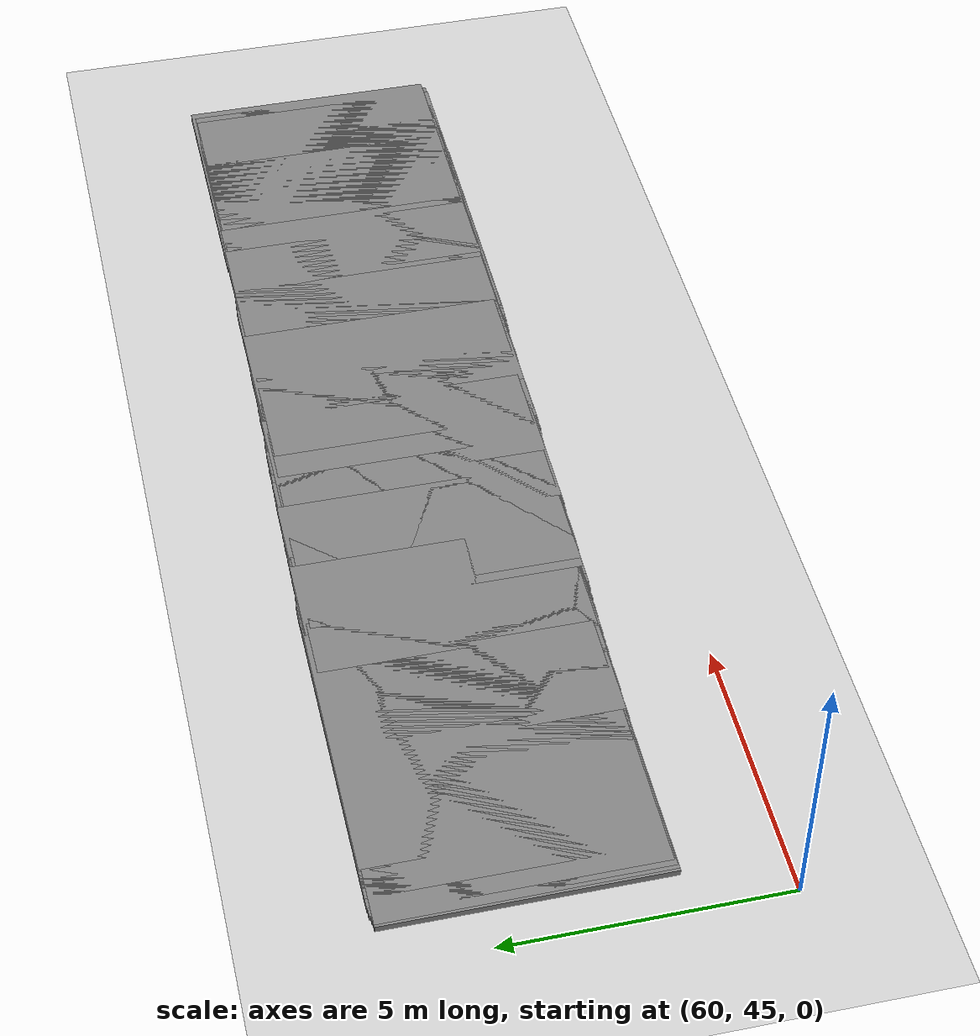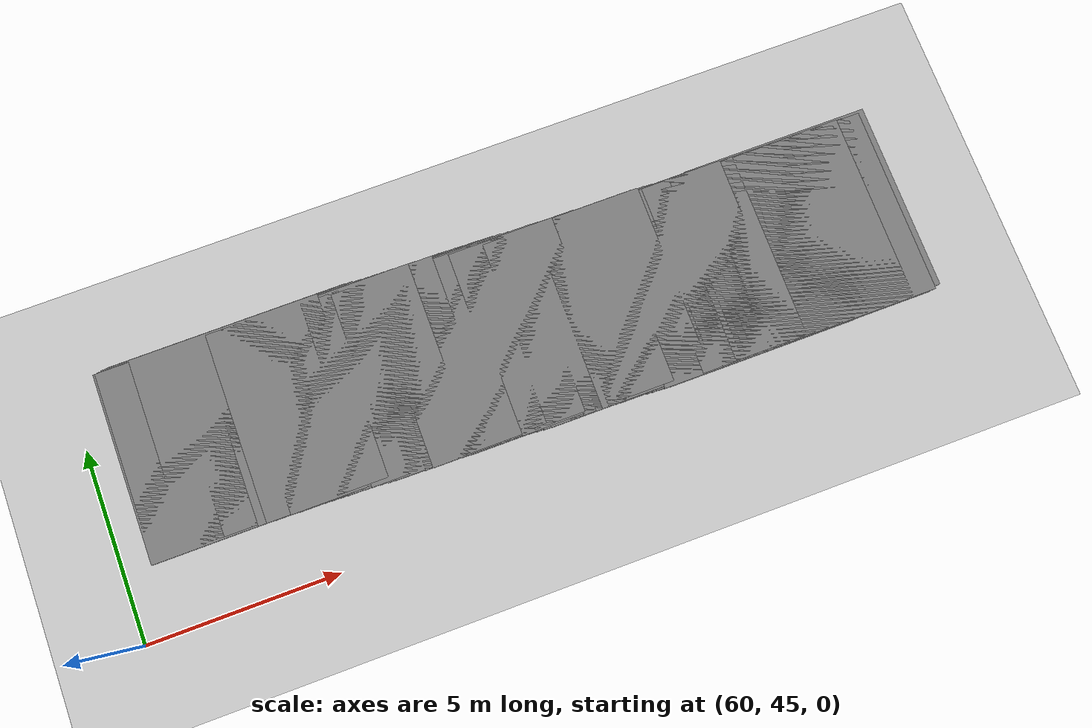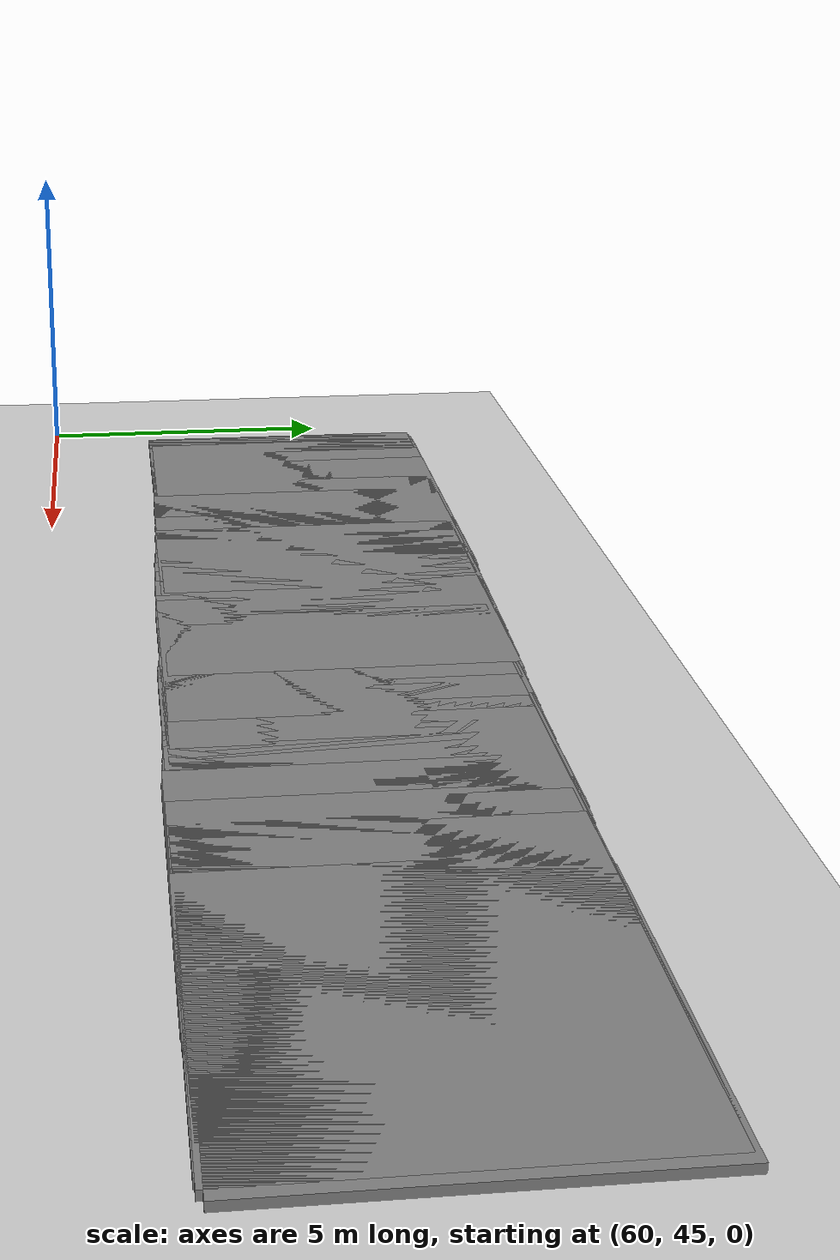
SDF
<sdf version="1.6">
 <world name="default">
  <include><uri>model://sun</uri></include>
  <include><uri>model://ground_plane</uri></include>
  <model name="road_segment_270">
   <static>true</static>
   <link name="link">
    <visual name="visual">
     <geometry><box><size>5.0 5.0 0.2</size></box></geometry>
     <material><ambient>0.5 0.5 0.5 1</ambient><diffuse>0.5 0.5 0.5 1</diffuse></material>
     <pose>79.09264280134074 49.093732123885516 0.0 0 0 0</pose>
    </visual>
    <collision name="collision">
     <geometry><box><size>5.0 5.0 0.2</size></box></geometry>
     <pose>79.09264280134074 49.093732123885516 0.0 0 0 0</pose>
    </collision>
   </link>
  </model>
  <model name="road_segment_271">
   <static>true</static>
   <link name="link">
    <visual name="visual">
     <geometry><box><size>5.0 5.0 0.2</size></box></geometry>
     <material><ambient>0.5 0.5 0.5 1</ambient><diffuse>0.5 0.5 0.5 1</diffuse></material>
     <pose>78.94742888653998 49.02631363896602 0.0 0 0 0</pose>
    </visual>
    <collision name="collision">
     <geometry><box><size>5.0 5.0 0.2</size></box></geometry>
     <pose>78.94742888653998 49.02631363896602 0.0 0 0 0</pose>
    </collision>
   </link>
  </model>
  <model name="road_segment_272">
   <static>true</static>
   <link name="link">
    <visual name="visual">
     <geometry><box><size>5.0 5.0 0.2</size></box></geometry>
     <material><ambient>0.5 0.5 0.5 1</ambient><diffuse>0.5 0.5 0.5 1</diffuse></material>
     <pose>78.79647075040774 49.01160415134155 0.0 0 0 0</pose>
    </visual>
    <collision name="collision">
     <geometry><box><size>5.0 5.0 0.2</size></box></geometry>
     <pose>78.79647075040774 49.01160415134155 0.0 0 0 0</pose>
    </collision>
   </link>
  </model>
  <model name="road_segment_273">
   <static>true</static>
   <link name="link">
    <visual name="visual">
     <geometry><box><size>5.0 5.0 0.2</size></box></geometry>
     <material><ambient>0.5 0.5 0.5 1</ambient><diffuse>0.5 0.5 0.5 1</diffuse></material>
     <pose>78.64206608152881 49.02794802647662 0.0 0 0 0</pose>
    </visual>
    <collision name="collision">
     <geometry><box><size>5.0 5.0 0.2</size></box></geometry>
     <pose>78.64206608152881 49.02794802647662 0.0 0 0 0</pose>
    </collision>
   </link>
  </model>
  <model name="road_segment_274">
   <static>true</static>
   <link name="link">
    <visual name="visual">
     <geometry><box><size>5.0 5.0 0.2</size></box></geometry>
     <material><ambient>0.5 0.5 0.5 1</ambient><diffuse>0.5 0.5 0.5 1</diffuse></material>
     <pose>78.48651256835747 49.04592628912231 0.0 0 0 0</pose>
    </visual>
    <collision name="collision">
     <geometry><box><size>5.0 5.0 0.2</size></box></geometry>
     <pose>78.48651256835747 49.04592628912231 0.0 0 0 0</pose>
    </collision>
   </link>
  </model>
  <model name="road_segment_275">
   <static>true</static>
   <link name="link">
    <visual name="visual">
     <geometry><box><size>5.0 5.0 0.2</size></box></geometry>
     <material><ambient>0.5 0.5 0.5 1</ambient><diffuse>0.5 0.5 0.5 1</diffuse></material>
     <pose>78.3380818896163 49.052872436055075 0.0 0 0 0</pose>
    </visual>
    <collision name="collision">
     <geometry><box><size>5.0 5.0 0.2</size></box></geometry>
     <pose>78.3380818896163 49.052872436055075 0.0 0 0 0</pose>
    </collision>
   </link>
  </model>
  <model name="road_segment_276">
   <static>true</static>
   <link name="link">
    <visual name="visual">
     <geometry><box><size>5.0 5.0 0.2</size></box></geometry>
     <material><ambient>0.5 0.5 0.5 1</ambient><diffuse>0.5 0.5 0.5 1</diffuse></material>
     <pose>78.1857451403854 49.04633488599814 0.0 0 0 0</pose>
    </visual>
    <collision name="collision">
     <geometry><box><size>5.0 5.0 0.2</size></box></geometry>
     <pose>78.1857451403854 49.04633488599814 0.0 0 0 0</pose>
    </collision>
   </link>
  </model>
  <model name="road_segment_277">
   <static>true</static>
   <link name="link">
    <visual name="visual">
     <geometry><box><size>5.0 5.0 0.2</size></box></geometry>
     <material><ambient>0.5 0.5 0.5 1</ambient><diffuse>0.5 0.5 0.5 1</diffuse></material>
     <pose>78.03547631083512 49.049603661026616 0.0 0 0 0</pose>
    </visual>
    <collision name="collision">
     <geometry><box><size>5.0 5.0 0.2</size></box></geometry>
     <pose>78.03547631083512 49.049603661026616 0.0 0 0 0</pose>
    </collision>
   </link>
  </model>
  <model name="road_segment_278">
   <static>true</static>
   <link name="link">
    <visual name="visual">
     <geometry><box><size>5.0 5.0 0.2</size></box></geometry>
     <material><ambient>0.5 0.5 0.5 1</ambient><diffuse>0.5 0.5 0.5 1</diffuse></material>
     <pose>77.88382886815353 49.05368962981401 0.0 0 0 0</pose>
    </visual>
    <collision name="collision">
     <geometry><box><size>5.0 5.0 0.2</size></box></geometry>
     <pose>77.88382886815353 49.05368962981401 0.0 0 0 0</pose>
    </collision>
   </link>
  </model>
  <model name="road_segment_279">
   <static>true</static>
   <link name="link">
    <visual name="visual">
     <geometry><box><size>5.0 5.0 0.2</size></box></geometry>
     <material><ambient>0.5 0.5 0.5 1</ambient><diffuse>0.5 0.5 0.5 1</diffuse></material>
     <pose>77.73930425990211 49.04347470785277 0.0 0 0 0</pose>
    </visual>
    <collision name="collision">
     <geometry><box><size>5.0 5.0 0.2</size></box></geometry>
     <pose>77.73930425990211 49.04347470785277 0.0 0 0 0</pose>
    </collision>
   </link>
  </model>
  <model name="road_segment_280">
   <static>true</static>
   <link name="link">
    <visual name="visual">
     <geometry><box><size>5.0 5.0 0.2</size></box></geometry>
     <material><ambient>0.5 0.5 0.5 1</ambient><diffuse>0.5 0.5 0.5 1</diffuse></material>
     <pose>77.59523918936114 49.03203399525677 0.0 0 0 0</pose>
    </visual>
    <collision name="collision">
     <geometry><box><size>5.0 5.0 0.2</size></box></geometry>
     <pose>77.59523918936114 49.03203399525677 0.0 0 0 0</pose>
    </collision>
   </link>
  </model>
  <model name="road_segment_281">
   <static>true</static>
   <link name="link">
    <visual name="visual">
     <geometry><box><size>5.0 5.0 0.2</size></box></geometry>
     <material><ambient>0.5 0.5 0.5 1</ambient><diffuse>0.5 0.5 0.5 1</diffuse></material>
     <pose>77.45186342540214 49.029991010870326 0.0 0 0 0</pose>
    </visual>
    <collision name="collision">
     <geometry><box><size>5.0 5.0 0.2</size></box></geometry>
     <pose>77.45186342540214 49.029991010870326 0.0 0 0 0</pose>
    </collision>
   </link>
  </model>
  <model name="road_segment_282">
   <static>true</static>
   <link name="link">
    <visual name="visual">
     <geometry><box><size>5.0 5.0 0.2</size></box></geometry>
     <material><ambient>0.5 0.5 0.5 1</ambient><diffuse>0.5 0.5 0.5 1</diffuse></material>
     <pose>77.30871743024937 49.027130832717695 0.0 0 0 0</pose>
    </visual>
    <collision name="collision">
     <geometry><box><size>5.0 5.0 0.2</size></box></geometry>
     <pose>77.30871743024937 49.027130832717695 0.0 0 0 0</pose>
    </collision>
   </link>
  </model>
  <model name="road_segment_283">
   <static>true</static>
   <link name="link">
    <visual name="visual">
     <geometry><box><size>5.0 5.0 0.2</size></box></geometry>
     <material><ambient>0.5 0.5 0.5 1</ambient><diffuse>0.5 0.5 0.5 1</diffuse></material>
     <pose>77.16603097283972 49.02467925144816 0.0 0 0 0</pose>
    </visual>
    <collision name="collision">
     <geometry><box><size>5.0 5.0 0.2</size></box></geometry>
     <pose>77.16603097283972 49.02467925144816 0.0 0 0 0</pose>
    </collision>
   </link>
  </model>
  <model name="road_segment_284">
   <static>true</static>
   <link name="link">
    <visual name="visual">
     <geometry><box><size>5.0 5.0 0.2</size></box></geometry>
     <material><ambient>0.5 0.5 0.5 1</ambient><diffuse>0.5 0.5 0.5 1</diffuse></material>
     <pose>77.01668121867768 49.015281523245854 0.0 0 0 0</pose>
    </visual>
    <collision name="collision">
     <geometry><box><size>5.0 5.0 0.2</size></box></geometry>
     <pose>77.01668121867768 49.015281523245854 0.0 0 0 0</pose>
    </collision>
   </link>
  </model>
  <model name="road_segment_285">
   <static>true</static>
   <link name="link">
    <visual name="visual">
     <geometry><box><size>5.0 5.0 0.2</size></box></geometry>
     <material><ambient>0.5 0.5 0.5 1</ambient><diffuse>0.5 0.5 0.5 1</diffuse></material>
     <pose>76.86641238912739 49.00792677943724 0.0 0 0 0</pose>
    </visual>
    <collision name="collision">
     <geometry><box><size>5.0 5.0 0.2</size></box></geometry>
     <pose>76.86641238912739 49.00792677943724 0.0 0 0 0</pose>
    </collision>
   </link>
  </model>
  <model name="road_segment_286">
   <static>true</static>
   <link name="link">
    <visual name="visual">
     <geometry><box><size>5.0 5.0 0.2</size></box></geometry>
     <material><ambient>0.5 0.5 0.5 1</ambient><diffuse>0.5 0.5 0.5 1</diffuse></material>
     <pose>76.71062910711717 48.99975484186971 0.0 0 0 0</pose>
    </visual>
    <collision name="collision">
     <geometry><box><size>5.0 5.0 0.2</size></box></geometry>
     <pose>76.71062910711717 48.99975484186971 0.0 0 0 0</pose>
    </collision>
   </link>
  </model>
  <model name="road_segment_287">
   <static>true</static>
   <link name="link">
    <visual name="visual">
     <geometry><box><size>5.0 5.0 0.2</size></box></geometry>
     <material><ambient>0.5 0.5 0.5 1</ambient><diffuse>0.5 0.5 0.5 1</diffuse></material>
     <pose>76.55530536278472 49.00751818256141 0.0 0 0 0</pose>
    </visual>
    <collision name="collision">
     <geometry><box><size>5.0 5.0 0.2</size></box></geometry>
     <pose>76.55530536278472 49.00751818256141 0.0 0 0 0</pose>
    </collision>
   </link>
  </model>
  <model name="road_segment_288">
   <static>true</static>
   <link name="link">
    <visual name="visual">
     <geometry><box><size>5.0 5.0 0.2</size></box></geometry>
     <material><ambient>0.5 0.5 0.5 1</ambient><diffuse>0.5 0.5 0.5 1</diffuse></material>
     <pose>76.39722439225494 49.015690120128944 0.0 0 0 0</pose>
    </visual>
    <collision name="collision">
     <geometry><box><size>5.0 5.0 0.2</size></box></geometry>
     <pose>76.39722439225494 49.015690120128944 0.0 0 0 0</pose>
    </collision>
   </link>
  </model>
  <model name="road_segment_289">
   <static>true</static>
   <link name="link">
    <visual name="visual">
     <geometry><box><size>5.0 5.0 0.2</size></box></geometry>
     <material><ambient>0.5 0.5 0.5 1</ambient><diffuse>0.5 0.5 0.5 1</diffuse></material>
     <pose>76.23408850694298 49.02427065457232 0.0 0 0 0</pose>
    </visual>
    <collision name="collision">
     <geometry><box><size>5.0 5.0 0.2</size></box></geometry>
     <pose>76.23408850694298 49.02427065457232 0.0 0 0 0</pose>
    </collision>
   </link>
  </model>
  <model name="road_segment_290">
   <static>true</static>
   <link name="link">
    <visual name="visual">
     <geometry><box><size>5.0 5.0 0.2</size></box></geometry>
     <material><ambient>0.5 0.5 0.5 1</ambient><diffuse>0.5 0.5 0.5 1</diffuse></material>
     <pose>76.06888470198304 49.0348941734094 0.0 0 0 0</pose>
    </visual>
    <collision name="collision">
     <geometry><box><size>5.0 5.0 0.2</size></box></geometry>
     <pose>76.06888470198304 49.0348941734094 0.0 0 0 0</pose>
    </collision>
   </link>
  </model>
  <model name="road_segment_291">
   <static>true</static>
   <link name="link">
    <visual name="visual">
     <geometry><box><size>5.0 5.0 0.2</size></box></geometry>
     <material><ambient>0.5 0.5 0.5 1</ambient><diffuse>0.5 0.5 0.5 1</diffuse></material>
     <pose>75.90689766096351 49.05164664542031 0.0 0 0 0</pose>
    </visual>
    <collision name="collision">
     <geometry><box><size>5.0 5.0 0.2</size></box></geometry>
     <pose>75.90689766096351 49.05164664542031 0.0 0 0 0</pose>
    </collision>
   </link>
  </model>
  <model name="road_segment_292">
   <static>true</static>
   <link name="link">
    <visual name="visual">
     <geometry><box><size>5.0 5.0 0.2</size></box></geometry>
     <material><ambient>0.5 0.5 0.5 1</ambient><diffuse>0.5 0.5 0.5 1</diffuse></material>
     <pose>75.74123431826048 49.05777559859415 0.0 0 0 0</pose>
    </visual>
    <collision name="collision">
     <geometry><box><size>5.0 5.0 0.2</size></box></geometry>
     <pose>75.74123431826048 49.05777559859415 0.0 0 0 0</pose>
    </collision>
   </link>
  </model>
  <model name="road_segment_293">
   <static>true</static>
   <link name="link">
    <visual name="visual">
     <geometry><box><size>5.0 5.0 0.2</size></box></geometry>
     <material><ambient>0.5 0.5 0.5 1</ambient><diffuse>0.5 0.5 0.5 1</diffuse></material>
     <pose>75.57465190016921 49.056549807959385 0.0 0 0 0</pose>
    </visual>
    <collision name="collision">
     <geometry><box><size>5.0 5.0 0.2</size></box></geometry>
     <pose>75.57465190016921 49.056549807959385 0.0 0 0 0</pose>
    </collision>
   </link>
  </model>
  <model name="road_segment_294">
   <static>true</static>
   <link name="link">
    <visual name="visual">
     <geometry><box><size>5.0 5.0 0.2</size></box></geometry>
     <material><ambient>0.5 0.5 0.5 1</ambient><diffuse>0.5 0.5 0.5 1</diffuse></material>
     <pose>75.40783971323906 49.05123804854448 0.0 0 0 0</pose>
    </visual>
    <collision name="collision">
     <geometry><box><size>5.0 5.0 0.2</size></box></geometry>
     <pose>75.40783971323906 49.05123804854448 0.0 0 0 0</pose>
    </collision>
   </link>
  </model>
  <model name="road_segment_295">
   <static>true</static>
   <link name="link">
    <visual name="visual">
     <geometry><box><size>5.0 5.0 0.2</size></box></geometry>
     <material><ambient>0.5 0.5 0.5 1</ambient><diffuse>0.5 0.5 0.5 1</diffuse></material>
     <pose>75.24010845088802 49.05859279235308 0.0 0 0 0</pose>
    </visual>
    <collision name="collision">
     <geometry><box><size>5.0 5.0 0.2</size></box></geometry>
     <pose>75.24010845088802 49.05859279235308 0.0 0 0 0</pose>
    </collision>
   </link>
  </model>
  <model name="road_segment_296">
   <static>true</static>
   <link name="link">
    <visual name="visual">
     <geometry><box><size>5.0 5.0 0.2</size></box></geometry>
     <material><ambient>0.5 0.5 0.5 1</ambient><diffuse>0.5 0.5 0.5 1</diffuse></material>
     <pose>75.07007950001746 49.06717332679646 0.0 0 0 0</pose>
    </visual>
    <collision name="collision">
     <geometry><box><size>5.0 5.0 0.2</size></box></geometry>
     <pose>75.07007950001746 49.06717332679646 0.0 0 0 0</pose>
    </collision>
   </link>
  </model>
  <model name="road_segment_297">
   <static>true</static>
   <link name="link">
    <visual name="visual">
     <geometry><box><size>5.0 5.0 0.2</size></box></geometry>
     <material><ambient>0.5 0.5 0.5 1</ambient><diffuse>0.5 0.5 0.5 1</diffuse></material>
     <pose>74.90418638847552 49.06676472992062 0.0 0 0 0</pose>
    </visual>
    <collision name="collision">
     <geometry><box><size>5.0 5.0 0.2</size></box></geometry>
     <pose>74.90418638847552 49.06676472992062 0.0 0 0 0</pose>
    </collision>
   </link>
  </model>
  <model name="road_segment_298">
   <static>true</static>
   <link name="link">
    <visual name="visual">
     <geometry><box><size>5.0 5.0 0.2</size></box></geometry>
     <material><ambient>0.5 0.5 0.5 1</ambient><diffuse>0.5 0.5 0.5 1</diffuse></material>
     <pose>74.73553605073626 49.06513034240276 0.0 0 0 0</pose>
    </visual>
    <collision name="collision">
     <geometry><box><size>5.0 5.0 0.2</size></box></geometry>
     <pose>74.73553605073626 49.06513034240276 0.0 0 0 0</pose>
    </collision>
   </link>
  </model>
  <model name="road_segment_299">
   <static>true</static>
   <link name="link">
    <visual name="visual">
     <geometry><box><size>5.0 5.0 0.2</size></box></geometry>
     <material><ambient>0.5 0.5 0.5 1</ambient><diffuse>0.5 0.5 0.5 1</diffuse></material>
     <pose>74.57285970313475 49.07044210182492 0.0 0 0 0</pose>
    </visual>
    <collision name="collision">
     <geometry><box><size>5.0 5.0 0.2</size></box></geometry>
     <pose>74.57285970313475 49.07044210182492 0.0 0 0 0</pose>
    </collision>
   </link>
  </model>
  <model name="road_segment_300">
   <static>true</static>
   <link name="link">
    <visual name="visual">
     <geometry><box><size>5.0 5.0 0.2</size></box></geometry>
     <material><ambient>0.5 0.5 0.5 1</ambient><diffuse>0.5 0.5 0.5 1</diffuse></material>
     <pose>74.40489867194482 49.076571054998766 0.0 0 0 0</pose>
    </visual>
    <collision name="collision">
     <geometry><box><size>5.0 5.0 0.2</size></box></geometry>
     <pose>74.40489867194482 49.076571054998766 0.0 0 0 0</pose>
    </collision>
   </link>
  </model>
  <model name="road_segment_301">
   <static>true</static>
   <link name="link">
    <visual name="visual">
     <geometry><box><size>5.0 5.0 0.2</size></box></geometry>
     <material><ambient>0.5 0.5 0.5 1</ambient><diffuse>0.5 0.5 0.5 1</diffuse></material>
     <pose>74.238775791564 49.076571054998766 0.0 0 0 0</pose>
    </visual>
    <collision name="collision">
     <geometry><box><size>5.0 5.0 0.2</size></box></geometry>
     <pose>74.238775791564 49.076571054998766 0.0 0 0 0</pose>
    </collision>
   </link>
  </model>
  <model name="road_segment_302">
   <static>true</static>
   <link name="link">
    <visual name="visual">
     <geometry><box><size>5.0 5.0 0.2</size></box></geometry>
     <material><ambient>0.5 0.5 0.5 1</ambient><diffuse>0.5 0.5 0.5 1</diffuse></material>
     <pose>74.06851707182187 49.075345264363996 0.0 0 0 0</pose>
    </visual>
    <collision name="collision">
     <geometry><box><size>5.0 5.0 0.2</size></box></geometry>
     <pose>74.06851707182187 49.075345264363996 0.0 0 0 0</pose>
    </collision>
   </link>
  </model>
  <model name="road_segment_303">
   <static>true</static>
   <link name="link">
    <visual name="visual">
     <geometry><box><size>5.0 5.0 0.2</size></box></geometry>
     <material><ambient>0.5 0.5 0.5 1</ambient><diffuse>0.5 0.5 0.5 1</diffuse></material>
     <pose>73.89664997010954 49.071259295576596 0.0 0 0 0</pose>
    </visual>
    <collision name="collision">
     <geometry><box><size>5.0 5.0 0.2</size></box></geometry>
     <pose>73.89664997010954 49.071259295576596 0.0 0 0 0</pose>
    </collision>
   </link>
  </model>
  <model name="road_segment_304">
   <static>true</static>
   <link name="link">
    <visual name="visual">
     <geometry><box><size>5.0 5.0 0.2</size></box></geometry>
     <material><ambient>0.5 0.5 0.5 1</ambient><diffuse>0.5 0.5 0.5 1</diffuse></material>
     <pose>73.71972795368035 49.064721745526924 0.0 0 0 0</pose>
    </visual>
    <collision name="collision">
     <geometry><box><size>5.0 5.0 0.2</size></box></geometry>
     <pose>73.71972795368035 49.064721745526924 0.0 0 0 0</pose>
    </collision>
   </link>
  </model>
  <model name="road_segment_305">
   <static>true</static>
   <link name="link">
    <visual name="visual">
     <geometry><box><size>5.0 5.0 0.2</size></box></geometry>
     <material><ambient>0.5 0.5 0.5 1</ambient><diffuse>0.5 0.5 0.5 1</diffuse></material>
     <pose>73.534993796239 49.06635613303752 0.0 0 0 0</pose>
    </visual>
    <collision name="collision">
     <geometry><box><size>5.0 5.0 0.2</size></box></geometry>
     <pose>73.534993796239 49.06635613303752 0.0 0 0 0</pose>
    </collision>
   </link>
  </model>
  <model name="road_segment_306">
   <static>true</static>
   <link name="link">
    <visual name="visual">
     <geometry><box><size>5.0 5.0 0.2</size></box></geometry>
     <material><ambient>0.5 0.5 0.5 1</ambient><diffuse>0.5 0.5 0.5 1</diffuse></material>
     <pose>73.35186802076784 49.074119473729226 0.0 0 0 0</pose>
    </visual>
    <collision name="collision">
     <geometry><box><size>5.0 5.0 0.2</size></box></geometry>
     <pose>73.35186802076784 49.074119473729226 0.0 0 0 0</pose>
    </collision>
   </link>
  </model>
  <model name="road_segment_307">
   <static>true</static>
   <link name="link">
    <visual name="visual">
     <geometry><box><size>5.0 5.0 0.2</size></box></geometry>
     <material><ambient>0.5 0.5 0.5 1</ambient><diffuse>0.5 0.5 0.5 1</diffuse></material>
     <pose>73.1703506272669 49.09087194574015 0.0 0 0 0</pose>
    </visual>
    <collision name="collision">
     <geometry><box><size>5.0 5.0 0.2</size></box></geometry>
     <pose>73.1703506272669 49.09087194574015 0.0 0 0 0</pose>
    </collision>
   </link>
  </model>
  <model name="road_segment_308">
   <static>true</static>
   <link name="link">
    <visual name="visual">
     <geometry><box><size>5.0 5.0 0.2</size></box></geometry>
     <material><ambient>0.5 0.5 0.5 1</ambient><diffuse>0.5 0.5 0.5 1</diffuse></material>
     <pose>72.98722485179574 49.10394704584675 0.0 0 0 0</pose>
    </visual>
    <collision name="collision">
     <geometry><box><size>5.0 5.0 0.2</size></box></geometry>
     <pose>72.98722485179574 49.10394704584675 0.0 0 0 0</pose>
    </collision>
   </link>
  </model>
  <model name="road_segment_309">
   <static>true</static>
   <link name="link">
    <visual name="visual">
     <geometry><box><size>5.0 5.0 0.2</size></box></geometry>
     <material><ambient>0.5 0.5 0.5 1</ambient><diffuse>0.5 0.5 0.5 1</diffuse></material>
     <pose>72.80272046322594 49.117839339705036 0.0 0 0 0</pose>
    </visual>
    <collision name="collision">
     <geometry><box><size>5.0 5.0 0.2</size></box></geometry>
     <pose>72.80272046322594 49.117839339705036 0.0 0 0 0</pose>
    </collision>
   </link>
  </model>
  <model name="road_segment_310">
   <static>true</static>
   <link name="link">
    <visual name="visual">
     <geometry><box><size>5.0 5.0 0.2</size></box></geometry>
     <material><ambient>0.5 0.5 0.5 1</ambient><diffuse>0.5 0.5 0.5 1</diffuse></material>
     <pose>72.6195946877548 49.123151099127206 0.0 0 0 0</pose>
    </visual>
    <collision name="collision">
     <geometry><box><size>5.0 5.0 0.2</size></box></geometry>
     <pose>72.6195946877548 49.123151099127206 0.0 0 0 0</pose>
    </collision>
   </link>
  </model>
  <model name="road_segment_311">
   <static>true</static>
   <link name="link">
    <visual name="visual">
     <geometry><box><size>5.0 5.0 0.2</size></box></geometry>
     <material><ambient>0.5 0.5 0.5 1</ambient><diffuse>0.5 0.5 0.5 1</diffuse></material>
     <pose>72.43003538440281 49.11988232409873 0.0 0 0 0</pose>
    </visual>
    <collision name="collision">
     <geometry><box><size>5.0 5.0 0.2</size></box></geometry>
     <pose>72.43003538440281 49.11988232409873 0.0 0 0 0</pose>
    </collision>
   </link>
  </model>
  <model name="road_segment_312">
   <static>true</static>
   <link name="link">
    <visual name="visual">
     <geometry><box><size>5.0 5.0 0.2</size></box></geometry>
     <material><ambient>0.5 0.5 0.5 1</ambient><diffuse>0.5 0.5 0.5 1</diffuse></material>
     <pose>72.23794862369239 49.11661354907027 0.0 0 0 0</pose>
    </visual>
    <collision name="collision">
     <geometry><box><size>5.0 5.0 0.2</size></box></geometry>
     <pose>72.23794862369239 49.11661354907027 0.0 0 0 0</pose>
    </collision>
   </link>
  </model>
  <model name="road_segment_313">
   <static>true</static>
   <link name="link">
    <visual name="visual">
     <geometry><box><size>5.0 5.0 0.2</size></box></geometry>
     <material><ambient>0.5 0.5 0.5 1</ambient><diffuse>0.5 0.5 0.5 1</diffuse></material>
     <pose>72.04126648591024 49.11865653346397 0.0 0 0 0</pose>
    </visual>
    <collision name="collision">
     <geometry><box><size>5.0 5.0 0.2</size></box></geometry>
     <pose>72.04126648591024 49.11865653346397 0.0 0 0 0</pose>
    </collision>
   </link>
  </model>
  <model name="road_segment_314">
   <static>true</static>
   <link name="link">
    <visual name="visual">
     <geometry><box><size>5.0 5.0 0.2</size></box></geometry>
     <material><ambient>0.5 0.5 0.5 1</ambient><diffuse>0.5 0.5 0.5 1</diffuse></material>
     <pose>71.8374615136979 49.1174307428292 0.0 0 0 0</pose>
    </visual>
    <collision name="collision">
     <geometry><box><size>5.0 5.0 0.2</size></box></geometry>
     <pose>71.8374615136979 49.1174307428292 0.0 0 0 0</pose>
    </collision>
   </link>
  </model>
  <model name="road_segment_315">
   <static>true</static>
   <link name="link">
    <visual name="visual">
     <geometry><box><size>5.0 5.0 0.2</size></box></geometry>
     <material><ambient>0.5 0.5 0.5 1</ambient><diffuse>0.5 0.5 0.5 1</diffuse></material>
     <pose>71.63181839070913 49.11293617716596 0.0 0 0 0</pose>
    </visual>
    <collision name="collision">
     <geometry><box><size>5.0 5.0 0.2</size></box></geometry>
     <pose>71.63181839070913 49.11293617716596 0.0 0 0 0</pose>
    </collision>
   </link>
  </model>
  <model name="road_segment_316">
   <static>true</static>
   <link name="link">
    <visual name="visual">
     <geometry><box><size>5.0 5.0 0.2</size></box></geometry>
     <material><ambient>0.5 0.5 0.5 1</ambient><diffuse>0.5 0.5 0.5 1</diffuse></material>
     <pose>71.41974173980685 49.11334477404906 0.0 0 0 0</pose>
    </visual>
    <collision name="collision">
     <geometry><box><size>5.0 5.0 0.2</size></box></geometry>
     <pose>71.41974173980685 49.11334477404906 0.0 0 0 0</pose>
    </collision>
   </link>
  </model>
  <model name="road_segment_317">
   <static>true</static>
   <link name="link">
    <visual name="visual">
     <geometry><box><size>5.0 5.0 0.2</size></box></geometry>
     <material><ambient>0.5 0.5 0.5 1</ambient><diffuse>0.5 0.5 0.5 1</diffuse></material>
     <pose>71.21134139055545 49.124785486637805 0.0 0 0 0</pose>
    </visual>
    <collision name="collision">
     <geometry><box><size>5.0 5.0 0.2</size></box></geometry>
     <pose>71.21134139055545 49.124785486637805 0.0 0 0 0</pose>
    </collision>
   </link>
  </model>
  <model name="road_segment_318">
   <static>true</static>
   <link name="link">
    <visual name="visual">
     <geometry><box><size>5.0 5.0 0.2</size></box></geometry>
     <material><ambient>0.5 0.5 0.5 1</ambient><diffuse>0.5 0.5 0.5 1</diffuse></material>
     <pose>71.01396994622395 49.13581760235072 0.0 0 0 0</pose>
    </visual>
    <collision name="collision">
     <geometry><box><size>5.0 5.0 0.2</size></box></geometry>
     <pose>71.01396994622395 49.13581760235072 0.0 0 0 0</pose>
    </collision>
   </link>
  </model>
  <model name="road_segment_319">
   <static>true</static>
   <link name="link">
    <visual name="visual">
     <geometry><box><size>5.0 5.0 0.2</size></box></geometry>
     <material><ambient>0.5 0.5 0.5 1</ambient><diffuse>0.5 0.5 0.5 1</diffuse></material>
     <pose>70.8230320297733 49.13786058674442 0.0 0 0 0</pose>
    </visual>
    <collision name="collision">
     <geometry><box><size>5.0 5.0 0.2</size></box></geometry>
     <pose>70.8230320297733 49.13786058674442 0.0 0 0 0</pose>
    </collision>
   </link>
  </model>
  <model name="road_segment_320">
   <static>true</static>
   <link name="link">
    <visual name="visual">
     <geometry><box><size>5.0 5.0 0.2</size></box></geometry>
     <material><ambient>0.5 0.5 0.5 1</ambient><diffuse>0.5 0.5 0.5 1</diffuse></material>
     <pose>70.63531087726308 49.13459181171595 0.0 0 0 0</pose>
    </visual>
    <collision name="collision">
     <geometry><box><size>5.0 5.0 0.2</size></box></geometry>
     <pose>70.63531087726308 49.13459181171595 0.0 0 0 0</pose>
    </collision>
   </link>
  </model>
  <model name="road_segment_321">
   <static>true</static>
   <link name="link">
    <visual name="visual">
     <geometry><box><size>5.0 5.0 0.2</size></box></geometry>
     <material><ambient>0.5 0.5 0.5 1</ambient><diffuse>0.5 0.5 0.5 1</diffuse></material>
     <pose>70.44896833785151 49.13459181171595 0.0 0 0 0</pose>
    </visual>
    <collision name="collision">
     <geometry><box><size>5.0 5.0 0.2</size></box></geometry>
     <pose>70.44896833785151 49.13459181171595 0.0 0 0 0</pose>
    </collision>
   </link>
  </model>
  <model name="road_segment_322">
   <static>true</static>
   <link name="link">
    <visual name="visual">
     <geometry><box><size>5.0 5.0 0.2</size></box></geometry>
     <material><ambient>0.5 0.5 0.5 1</ambient><diffuse>0.5 0.5 0.5 1</diffuse></material>
     <pose>70.25504342629934 49.14194655553182 0.0 0 0 0</pose>
    </visual>
    <collision name="collision">
     <geometry><box><size>5.0 5.0 0.2</size></box></geometry>
     <pose>70.25504342629934 49.14194655553182 0.0 0 0 0</pose>
    </collision>
   </link>
  </model>
  <model name="road_segment_323">
   <static>true</static>
   <link name="link">
    <visual name="visual">
     <geometry><box><size>5.0 5.0 0.2</size></box></geometry>
     <material><ambient>0.5 0.5 0.5 1</ambient><diffuse>0.5 0.5 0.5 1</diffuse></material>
     <pose>70.06042920819783 49.15338726812056 0.0 0 0 0</pose>
    </visual>
    <collision name="collision">
     <geometry><box><size>5.0 5.0 0.2</size></box></geometry>
     <pose>70.06042920819783 49.15338726812056 0.0 0 0 0</pose>
    </collision>
   </link>
  </model>
  <model name="road_segment_324">
   <static>true</static>
   <link name="link">
    <visual name="visual">
     <geometry><box><size>5.0 5.0 0.2</size></box></geometry>
     <material><ambient>0.5 0.5 0.5 1</ambient><diffuse>0.5 0.5 0.5 1</diffuse></material>
     <pose>69.86765314093807 49.16033341505334 0.0 0 0 0</pose>
    </visual>
    <collision name="collision">
     <geometry><box><size>5.0 5.0 0.2</size></box></geometry>
     <pose>69.86765314093807 49.16033341505334 0.0 0 0 0</pose>
    </collision>
   </link>
  </model>
  <model name="road_segment_325">
   <static>true</static>
   <link name="link">
    <visual name="visual">
     <geometry><box><size>5.0 5.0 0.2</size></box></geometry>
     <material><ambient>0.5 0.5 0.5 1</ambient><diffuse>0.5 0.5 0.5 1</diffuse></material>
     <pose>69.67280915399768 49.155021655631174 0.0 0 0 0</pose>
    </visual>
    <collision name="collision">
     <geometry><box><size>5.0 5.0 0.2</size></box></geometry>
     <pose>69.67280915399768 49.155021655631174 0.0 0 0 0</pose>
    </collision>
   </link>
  </model>
  <model name="road_segment_326">
   <static>true</static>
   <link name="link">
    <visual name="visual">
     <geometry><box><size>5.0 5.0 0.2</size></box></geometry>
     <material><ambient>0.5 0.5 0.5 1</ambient><diffuse>0.5 0.5 0.5 1</diffuse></material>
     <pose>69.47589724737662 49.1595162212944 0.0 0 0 0</pose>
    </visual>
    <collision name="collision">
     <geometry><box><size>5.0 5.0 0.2</size></box></geometry>
     <pose>69.47589724737662 49.1595162212944 0.0 0 0 0</pose>
    </collision>
   </link>
  </model>
  <model name="road_segment_327">
   <static>true</static>
   <link name="link">
    <visual name="visual">
     <geometry><box><size>5.0 5.0 0.2</size></box></geometry>
     <material><ambient>0.5 0.5 0.5 1</ambient><diffuse>0.5 0.5 0.5 1</diffuse></material>
     <pose>69.28013418501534 49.17013974013148 0.0 0 0 0</pose>
    </visual>
    <collision name="collision">
     <geometry><box><size>5.0 5.0 0.2</size></box></geometry>
     <pose>69.28013418501534 49.17013974013148 0.0 0 0 0</pose>
    </collision>
   </link>
  </model>
  <model name="road_segment_328">
   <static>true</static>
   <link name="link">
    <visual name="visual">
     <geometry><box><size>5.0 5.0 0.2</size></box></geometry>
     <material><ambient>0.5 0.5 0.5 1</ambient><diffuse>0.5 0.5 0.5 1</diffuse></material>
     <pose>69.07586967509258 49.18689221214239 0.0 0 0 0</pose>
    </visual>
    <collision name="collision">
     <geometry><box><size>5.0 5.0 0.2</size></box></geometry>
     <pose>69.07586967509258 49.18689221214239 0.0 0 0 0</pose>
    </collision>
   </link>
  </model>
  <model name="road_segment_329">
   <static>true</static>
   <link name="link">
    <visual name="visual">
     <geometry><box><size>5.0 5.0 0.2</size></box></geometry>
     <material><ambient>0.5 0.5 0.5 1</ambient><diffuse>0.5 0.5 0.5 1</diffuse></material>
     <pose>68.87367308488311 49.198332924738395 0.0 0 0 0</pose>
    </visual>
    <collision name="collision">
     <geometry><box><size>5.0 5.0 0.2</size></box></geometry>
     <pose>68.87367308488311 49.198332924738395 0.0 0 0 0</pose>
    </collision>
   </link>
  </model>
  <model name="road_segment_330">
   <static>true</static>
   <link name="link">
    <visual name="visual">
     <geometry><box><size>5.0 5.0 0.2</size></box></geometry>
     <material><ambient>0.5 0.5 0.5 1</ambient><diffuse>0.5 0.5 0.5 1</diffuse></material>
     <pose>68.67193603235144 49.20364468415331 0.0 0 0 0</pose>
    </visual>
    <collision name="collision">
     <geometry><box><size>5.0 5.0 0.2</size></box></geometry>
     <pose>68.67193603235144 49.20364468415331 0.0 0 0 0</pose>
    </collision>
   </link>
  </model>
  <model name="road_segment_331">
   <static>true</static>
   <link name="link">
    <visual name="visual">
     <geometry><box><size>5.0 5.0 0.2</size></box></geometry>
     <material><ambient>0.5 0.5 0.5 1</ambient><diffuse>0.5 0.5 0.5 1</diffuse></material>
     <pose>68.46905013555997 49.21426820299038 0.0 0 0 0</pose>
    </visual>
    <collision name="collision">
     <geometry><box><size>5.0 5.0 0.2</size></box></geometry>
     <pose>68.46905013555997 49.21426820299038 0.0 0 0 0</pose>
    </collision>
   </link>
  </model>
  <model name="road_segment_332">
   <static>true</static>
   <link name="link">
    <visual name="visual">
     <geometry><box><size>5.0 5.0 0.2</size></box></geometry>
     <material><ambient>0.5 0.5 0.5 1</ambient><diffuse>0.5 0.5 0.5 1</diffuse></material>
     <pose>68.261109324019 49.21304241235561 0.0 0 0 0</pose>
    </visual>
    <collision name="collision">
     <geometry><box><size>5.0 5.0 0.2</size></box></geometry>
     <pose>68.261109324019 49.21304241235561 0.0 0 0 0</pose>
    </collision>
   </link>
  </model>
  <model name="road_segment_333">
   <static>true</static>
   <link name="link">
    <visual name="visual">
     <geometry><box><size>5.0 5.0 0.2</size></box></geometry>
     <material><ambient>0.5 0.5 0.5 1</ambient><diffuse>0.5 0.5 0.5 1</diffuse></material>
     <pose>68.05316851247804 49.22284873743376 0.0 0 0 0</pose>
    </visual>
    <collision name="collision">
     <geometry><box><size>5.0 5.0 0.2</size></box></geometry>
     <pose>68.05316851247804 49.22284873743376 0.0 0 0 0</pose>
    </collision>
   </link>
  </model>
  <model name="road_segment_334">
   <static>true</static>
   <link name="link">
    <visual name="visual">
     <geometry><box><size>5.0 5.0 0.2</size></box></geometry>
     <material><ambient>0.5 0.5 0.5 1</ambient><diffuse>0.5 0.5 0.5 1</diffuse></material>
     <pose>67.84729562061771 49.228569093731764 0.0 0 0 0</pose>
    </visual>
    <collision name="collision">
     <geometry><box><size>5.0 5.0 0.2</size></box></geometry>
     <pose>67.84729562061771 49.228569093731764 0.0 0 0 0</pose>
    </collision>
   </link>
  </model>
  <model name="road_segment_335">
   <static>true</static>
   <link name="link">
    <visual name="visual">
     <geometry><box><size>5.0 5.0 0.2</size></box></geometry>
     <material><ambient>0.5 0.5 0.5 1</ambient><diffuse>0.5 0.5 0.5 1</diffuse></material>
     <pose>67.64050365333651 49.236741031299296 0.0 0 0 0</pose>
    </visual>
    <collision name="collision">
     <geometry><box><size>5.0 5.0 0.2</size></box></geometry>
     <pose>67.64050365333651 49.236741031299296 0.0 0 0 0</pose>
    </collision>
   </link>
  </model>
  <model name="road_segment_336">
   <static>true</static>
   <link name="link">
    <visual name="visual">
     <geometry><box><size>5.0 5.0 0.2</size></box></geometry>
     <material><ambient>0.5 0.5 0.5 1</ambient><diffuse>0.5 0.5 0.5 1</diffuse></material>
     <pose>67.42957584669401 49.2424613875973 0.0 0 0 0</pose>
    </visual>
    <collision name="collision">
     <geometry><box><size>5.0 5.0 0.2</size></box></geometry>
     <pose>67.42957584669401 49.2424613875973 0.0 0 0 0</pose>
    </collision>
   </link>
  </model>
  <model name="road_segment_337">
   <static>true</static>
   <link name="link">
    <visual name="visual">
     <geometry><box><size>5.0 5.0 0.2</size></box></geometry>
     <material><ambient>0.5 0.5 0.5 1</ambient><diffuse>0.5 0.5 0.5 1</diffuse></material>
     <pose>67.21726942695284 49.244504371983744 0.0 0 0 0</pose>
    </visual>
    <collision name="collision">
     <geometry><box><size>5.0 5.0 0.2</size></box></geometry>
     <pose>67.21726942695284 49.244504371983744 0.0 0 0 0</pose>
    </collision>
   </link>
  </model>
  <model name="road_segment_338">
   <static>true</static>
   <link name="link">
    <visual name="visual">
     <geometry><box><size>5.0 5.0 0.2</size></box></geometry>
     <material><ambient>0.5 0.5 0.5 1</ambient><diffuse>0.5 0.5 0.5 1</diffuse></material>
     <pose>67.00496300721169 49.24123559696253 0.0 0 0 0</pose>
    </visual>
    <collision name="collision">
     <geometry><box><size>5.0 5.0 0.2</size></box></geometry>
     <pose>67.00496300721169 49.24123559696253 0.0 0 0 0</pose>
    </collision>
   </link>
  </model>
  <model name="road_segment_339">
   <static>true</static>
   <link name="link">
    <visual name="visual">
     <geometry><box><size>5.0 5.0 0.2</size></box></geometry>
     <material><ambient>0.5 0.5 0.5 1</ambient><diffuse>0.5 0.5 0.5 1</diffuse></material>
     <pose>66.79357566289139 49.251859115799604 0.0 0 0 0</pose>
    </visual>
    <collision name="collision">
     <geometry><box><size>5.0 5.0 0.2</size></box></geometry>
     <pose>66.79357566289139 49.251859115799604 0.0 0 0 0</pose>
    </collision>
   </link>
  </model>
  <model name="road_segment_340">
   <static>true</static>
   <link name="link">
    <visual name="visual">
     <geometry><box><size>5.0 5.0 0.2</size></box></geometry>
     <material><ambient>0.5 0.5 0.5 1</ambient><diffuse>0.5 0.5 0.5 1</diffuse></material>
     <pose>66.58448600705799 49.25757947209035 0.0 0 0 0</pose>
    </visual>
    <collision name="collision">
     <geometry><box><size>5.0 5.0 0.2</size></box></geometry>
     <pose>66.58448600705799 49.25757947209035 0.0 0 0 0</pose>
    </collision>
   </link>
  </model>
  <model name="road_segment_341">
   <static>true</static>
   <link name="link">
    <visual name="visual">
     <geometry><box><size>5.0 5.0 0.2</size></box></geometry>
     <material><ambient>0.5 0.5 0.5 1</ambient><diffuse>0.5 0.5 0.5 1</diffuse></material>
     <pose>66.37585588896769 49.25553648770391 0.0 0 0 0</pose>
    </visual>
    <collision name="collision">
     <geometry><box><size>5.0 5.0 0.2</size></box></geometry>
     <pose>66.37585588896769 49.25553648770391 0.0 0 0 0</pose>
    </collision>
   </link>
  </model>
  <model name="road_segment_342">
   <static>true</static>
   <link name="link">
    <visual name="visual">
     <geometry><box><size>5.0 5.0 0.2</size></box></geometry>
     <material><ambient>0.5 0.5 0.5 1</ambient><diffuse>0.5 0.5 0.5 1</diffuse></material>
     <pose>66.1681448462656 49.26370842526419 0.0 0 0 0</pose>
    </visual>
    <collision name="collision">
     <geometry><box><size>5.0 5.0 0.2</size></box></geometry>
     <pose>66.1681448462656 49.26370842526419 0.0 0 0 0</pose>
    </collision>
   </link>
  </model>
  <model name="road_segment_343">
   <static>true</static>
   <link name="link">
    <visual name="visual">
     <geometry><box><size>5.0 5.0 0.2</size></box></geometry>
     <material><ambient>0.5 0.5 0.5 1</ambient><diffuse>0.5 0.5 0.5 1</diffuse></material>
     <pose>65.95721703965577 49.26656860341682 0.0 0 0 0</pose>
    </visual>
    <collision name="collision">
     <geometry><box><size>5.0 5.0 0.2</size></box></geometry>
     <pose>65.95721703965577 49.26656860341682 0.0 0 0 0</pose>
    </collision>
   </link>
  </model>
  <model name="road_segment_344">
   <static>true</static>
   <link name="link">
    <visual name="visual">
     <geometry><box><size>5.0 5.0 0.2</size></box></geometry>
     <material><ambient>0.5 0.5 0.5 1</ambient><diffuse>0.5 0.5 0.5 1</diffuse></material>
     <pose>65.74743807730569 49.27106316908006 0.0 0 0 0</pose>
    </visual>
    <collision name="collision">
     <geometry><box><size>5.0 5.0 0.2</size></box></geometry>
     <pose>65.74743807730569 49.27106316908006 0.0 0 0 0</pose>
    </collision>
   </link>
  </model>
  <model name="road_segment_345">
   <static>true</static>
   <link name="link">
    <visual name="visual">
     <geometry><box><size>5.0 5.0 0.2</size></box></geometry>
     <material><ambient>0.5 0.5 0.5 1</ambient><diffuse>0.5 0.5 0.5 1</diffuse></material>
     <pose>65.53076604936435 49.2751491378602 0.0 0 0 0</pose>
    </visual>
    <collision name="collision">
     <geometry><box><size>5.0 5.0 0.2</size></box></geometry>
     <pose>65.53076604936435 49.2751491378602 0.0 0 0 0</pose>
    </collision>
   </link>
  </model>
  <model name="road_segment_346">
   <static>true</static>
   <link name="link">
    <visual name="visual">
     <geometry><box><size>5.0 5.0 0.2</size></box></geometry>
     <material><ambient>0.5 0.5 0.5 1</ambient><diffuse>0.5 0.5 0.5 1</diffuse></material>
     <pose>65.3129451771632 49.285772656697276 0.0 0 0 0</pose>
    </visual>
    <collision name="collision">
     <geometry><box><size>5.0 5.0 0.2</size></box></geometry>
     <pose>65.3129451771632 49.285772656697276 0.0 0 0 0</pose>
    </collision>
   </link>
  </model>
  <model name="road_segment_347">
   <static>true</static>
   <link name="link">
    <visual name="visual">
     <geometry><box><size>5.0 5.0 0.2</size></box></geometry>
     <material><ambient>0.5 0.5 0.5 1</ambient><diffuse>0.5 0.5 0.5 1</diffuse></material>
     <pose>65.09857083774139 49.3078368881231 0.0 0 0 0</pose>
    </visual>
    <collision name="collision">
     <geometry><box><size>5.0 5.0 0.2</size></box></geometry>
     <pose>65.09857083774139 49.3078368881231 0.0 0 0 0</pose>
    </collision>
   </link>
  </model>
  <model name="road_segment_348">
   <static>true</static>
   <link name="link">
    <visual name="visual">
     <geometry><box><size>5.0 5.0 0.2</size></box></geometry>
     <material><ambient>0.5 0.5 0.5 1</ambient><diffuse>0.5 0.5 0.5 1</diffuse></material>
     <pose>64.89384679014084 49.31846040696017 0.0 0 0 0</pose>
    </visual>
    <collision name="collision">
     <geometry><box><size>5.0 5.0 0.2</size></box></geometry>
     <pose>64.89384679014084 49.31846040696017 0.0 0 0 0</pose>
    </collision>
   </link>
  </model>
  <model name="road_segment_349">
   <static>true</static>
   <link name="link">
    <visual name="visual">
     <geometry><box><size>5.0 5.0 0.2</size></box></geometry>
     <material><ambient>0.5 0.5 0.5 1</ambient><diffuse>0.5 0.5 0.5 1</diffuse></material>
     <pose>64.70451725562776 49.31641742257373 0.0 0 0 0</pose>
    </visual>
    <collision name="collision">
     <geometry><box><size>5.0 5.0 0.2</size></box></geometry>
     <pose>64.70451725562776 49.31641742257373 0.0 0 0 0</pose>
    </collision>
   </link>
  </model>
  <model name="road_segment_350">
   <static>true</static>
   <link name="link">
    <visual name="visual">
     <geometry><box><size>5.0 5.0 0.2</size></box></geometry>
     <material><ambient>0.5 0.5 0.5 1</ambient><diffuse>0.5 0.5 0.5 1</diffuse></material>
     <pose>64.52208078673858 49.309879872516795 0.0 0 0 0</pose>
    </visual>
    <collision name="collision">
     <geometry><box><size>5.0 5.0 0.2</size></box></geometry>
     <pose>64.52208078673858 49.309879872516795 0.0 0 0 0</pose>
    </collision>
   </link>
  </model>
  <model name="road_segment_351">
   <static>true</static>
   <link name="link">
    <visual name="visual">
     <geometry><box><size>5.0 5.0 0.2</size></box></geometry>
     <material><ambient>0.5 0.5 0.5 1</ambient><diffuse>0.5 0.5 0.5 1</diffuse></material>
     <pose>64.33987408665567 49.30579390373666 0.0 0 0 0</pose>
    </visual>
    <collision name="collision">
     <geometry><box><size>5.0 5.0 0.2</size></box></geometry>
     <pose>64.33987408665567 49.30579390373666 0.0 0 0 0</pose>
    </collision>
   </link>
  </model>
  <model name="road_segment_352">
   <static>true</static>
   <link name="link">
    <visual name="visual">
     <geometry><box><size>5.0 5.0 0.2</size></box></geometry>
     <material><ambient>0.5 0.5 0.5 1</ambient><diffuse>0.5 0.5 0.5 1</diffuse></material>
     <pose>64.1578971554443 49.31069706627573 0.0 0 0 0</pose>
    </visual>
    <collision name="collision">
     <geometry><box><size>5.0 5.0 0.2</size></box></geometry>
     <pose>64.1578971554443 49.31069706627573 0.0 0 0 0</pose>
    </collision>
   </link>
  </model>
  <model name="road_segment_353">
   <static>true</static>
   <link name="link">
    <visual name="visual">
     <geometry><box><size>5.0 5.0 0.2</size></box></geometry>
     <material><ambient>0.5 0.5 0.5 1</ambient><diffuse>0.5 0.5 0.5 1</diffuse></material>
     <pose>63.97201415374316 49.3176432132085 0.0 0 0 0</pose>
    </visual>
    <collision name="collision">
     <geometry><box><size>5.0 5.0 0.2</size></box></geometry>
     <pose>63.97201415374316 49.3176432132085 0.0 0 0 0</pose>
    </collision>
   </link>
  </model>
  <model name="road_segment_354">
   <static>true</static>
   <link name="link">
    <visual name="visual">
     <geometry><box><size>5.0 5.0 0.2</size></box></geometry>
     <material><ambient>0.5 0.5 0.5 1</ambient><diffuse>0.5 0.5 0.5 1</diffuse></material>
     <pose>63.778548779934084 49.316826019449564 0.0 0 0 0</pose>
    </visual>
    <collision name="collision">
     <geometry><box><size>5.0 5.0 0.2</size></box></geometry>
     <pose>63.778548779934084 49.316826019449564 0.0 0 0 0</pose>
    </collision>
   </link>
  </model>
  <model name="road_segment_355">
   <static>true</static>
   <link name="link">
    <visual name="visual">
     <geometry><box><size>5.0 5.0 0.2</size></box></geometry>
     <material><ambient>0.5 0.5 0.5 1</ambient><diffuse>0.5 0.5 0.5 1</diffuse></material>
     <pose>63.59611231101226 49.31600882569063 0.0 0 0 0</pose>
    </visual>
    <collision name="collision">
     <geometry><box><size>5.0 5.0 0.2</size></box></geometry>
     <pose>63.59611231101226 49.31600882569063 0.0 0 0 0</pose>
    </collision>
   </link>
  </model>
  <model name="road_segment_356">
   <static>true</static>
   <link name="link">
    <visual name="visual">
     <geometry><box><size>5.0 5.0 0.2</size></box></geometry>
     <material><ambient>0.5 0.5 0.5 1</ambient><diffuse>0.5 0.5 0.5 1</diffuse></material>
     <pose>63.446532788011325 49.30538530685356 0.0 0 0 0</pose>
    </visual>
    <collision name="collision">
     <geometry><box><size>5.0 5.0 0.2</size></box></geometry>
     <pose>63.446532788011325 49.30538530685356 0.0 0 0 0</pose>
    </collision>
   </link>
  </model>
  <model name="road_segment_357">
   <static>true</static>
   <link name="link">
    <visual name="visual">
     <geometry><box><size>5.0 5.0 0.2</size></box></geometry>
     <material><ambient>0.5 0.5 0.5 1</ambient><diffuse>0.5 0.5 0.5 1</diffuse></material>
     <pose>63.33900096504208 49.280460897275105 0.0 0 0 0</pose>
    </visual>
    <collision name="collision">
     <geometry><box><size>5.0 5.0 0.2</size></box></geometry>
     <pose>63.33900096504208 49.280460897275105 0.0 0 0 0</pose>
    </collision>
   </link>
  </model>
  <model name="road_segment_358">
   <static>true</static>
   <link name="link">
    <visual name="visual">
     <geometry><box><size>5.0 5.0 0.2</size></box></geometry>
     <material><ambient>0.5 0.5 0.5 1</ambient><diffuse>0.5 0.5 0.5 1</diffuse></material>
     <pose>63.26823215845081 49.26534281278205 0.0 0 0 0</pose>
    </visual>
    <collision name="collision">
     <geometry><box><size>5.0 5.0 0.2</size></box></geometry>
     <pose>63.26823215845081 49.26534281278205 0.0 0 0 0</pose>
    </collision>
   </link>
  </model>
  <model name="road_segment_359">
   <static>true</static>
   <link name="link">
    <visual name="visual">
     <geometry><box><size>5.0 5.0 0.2</size></box></geometry>
     <material><ambient>0.5 0.5 0.5 1</ambient><diffuse>0.5 0.5 0.5 1</diffuse></material>
     <pose>63.21998069940982 49.26493421589896 0.0 0 0 0</pose>
    </visual>
    <collision name="collision">
     <geometry><box><size>5.0 5.0 0.2</size></box></geometry>
     <pose>63.21998069940982 49.26493421589896 0.0 0 0 0</pose>
    </collision>
   </link>
  </model>
 </world>
</sdf>
